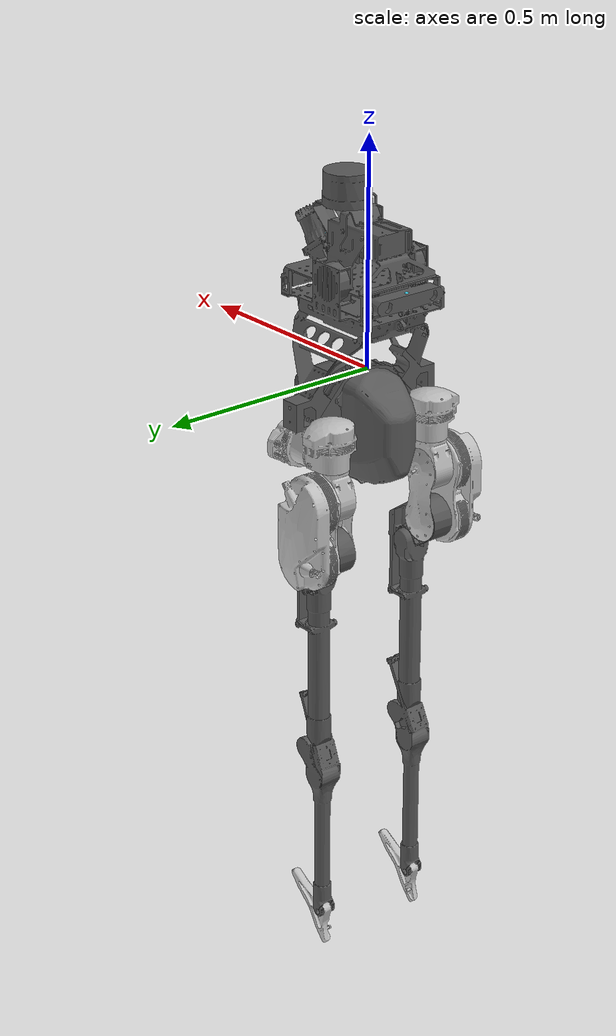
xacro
<?xml version="1.0"?>
<!-- Author: Bruce JK Huang
	 Email:  bjhuang@umich.edu
     Date:   10/10/2018   -->
<robot name="cassie"
  xmlns:xacro="http://ros.org/wiki/xacro">

  <!-- Properties -->
  <xacro:property name="cyan_RGB" value="0.267 0.89 1 1" />
  <xacro:property name="black_RGB" value="0.1 0.1 0.1 1" />
  <xacro:property name="grey_RGB" value="0.35 0.35 0.35 1" />
  <xacro:property name="orange_RGB" value=".9569 .5372 .2588 1" />
  <xacro:property name="blue_RGB" value=".0157 .1176 .2588 1" />
  <xacro:property name="maize_RGB" value=".9451 .7686 0 1" />
  <xacro:property name="light_grey_RGB" value="0.75 0.75 0.75 1" />

  <!-- Link Definitions-->
  <xacro:macro name="torso" params="cname color">
    <link name="torso">
      <inertial>
        <origin xyz="0 0 0" rpy="0 0 0"/>
        <mass value="8" />
		<inertia ixx=".0942" ixy=".000169" ixz=".015" iyy=".084" iyz=".000516" izz=".113" />
      </inertial>
      <visual>
          <origin xyz="-0.192 -0.19 -0.095" rpy="1.57 0 1.57" />
        <geometry>
          <mesh filename="package://cassie_description/meshes/CassieTorso_Mount.STL" scale="0.001 0.001 0.001"/>
        </geometry>
        <material name="${cname}">
          <color rgba="${color}" />
        </material>
      </visual>
    </link>
  </xacro:macro>

  <xacro:macro name="top_lidar" params="cname color">
    <link name="top_lidar">
      <inertial>
        <origin xyz="0 0 0" rpy="0 0 0"/>
        <mass value="0" />
                <inertia ixx="0" ixy="0" ixz="0" iyy="0" iyz="0" izz="0" />
      </inertial>
      <visual>
          <origin xyz="0 0 0 " rpy="0 0 0" />
        <geometry>
           <sphere radius="0.01"/>
        </geometry>
        <material name="${cname}">
          <color rgba="${color}" />
        </material>
      </visual>
    </link>
  </xacro:macro>

  <xacro:macro name="tilted_lidar" params="cname color">
    <link name="tilted_lidar">
      <inertial>
        <origin xyz="0 0 0" rpy="0 0 0"/>
        <mass value="0" />
                <inertia ixx="0" ixy="0" ixz="0" iyy="0" iyz="0" izz="0" />
      </inertial>
      <visual>
          <origin xyz="0 0 0 " rpy="0 0 0" />
        <geometry>
           <sphere radius="0.01"/>
        </geometry>
        <material name="${cname}">
          <color rgba="${color}" />
        </material>
      </visual>
    </link>
  </xacro:macro>

  <xacro:macro name="front_camera" params="cname color">
    <link name="front_camera">
      <inertial>
        <origin xyz="0 0 0" rpy="0 0 0"/>
        <mass value="0" />
                <inertia ixx="0" ixy="0" ixz="0" iyy="0" iyz="0" izz="0" />
      </inertial>
      <visual>
          <origin xyz="0 0 0 " rpy="0 0 0" />
        <geometry>
           <sphere radius="0.01"/>
        </geometry>
        <material name="${cname}">
          <color rgba="${color}" />
        </material>
      </visual>
    </link>
  </xacro:macro>

  <xacro:macro name="back_camera" params="cname color">
    <link name="back_camera">
      <inertial>
        <origin xyz="0 0 0" rpy="0 0 0"/>
        <mass value="0" />
                <inertia ixx="0" ixy="0" ixz="0" iyy="0" iyz="0" izz="0" />
      </inertial>
      <visual>
          <origin xyz="0 0 0 " rpy="0 0 0" />
        <geometry>
           <sphere radius="0.01"/>
        </geometry>
        <material name="${cname}">
          <color rgba="${color}" />
        </material>
      </visual>
    </link>
  </xacro:macro>

  <xacro:macro name="vectorNav">
    <link name="vectorNav">
      <inertial>
        <origin xyz="0 0 0" rpy="0 0 0"/>
        <mass value="0" />
                <inertia ixx="0" ixy="0" ixz="0" iyy="0" iyz="0" izz="0" />
      </inertial>
    </link>
  </xacro:macro>

  <xacro:macro name="pelvis" params="cname color">
    <link name="pelvis">
      <inertial>
        <origin xyz=".0507 0 .0284" rpy="0 0 0"/>
        <mass value="10.33" />
		<inertia ixx=".0942" ixy=".000169" ixz=".015" iyy=".084" iyz=".000516" izz=".113" />
      </inertial>
      <visual>
        <origin xyz="0 0 0" rpy="0 0 0" />
        <geometry>
          <mesh filename="package://cassie_description/meshes/pelvis.stl" scale="1 1 1"/>
        </geometry>
        <material name="${cname}">
          <color rgba="${color}" />
        </material>
      </visual>
    </link>
  </xacro:macro>

  <xacro:macro name="pelvis_abduction" params="side cname color stl_ext">
    <link name="${side}_pelvis_abduction">
      <inertial>
        <origin xyz="0 0 0" rpy="0 0 0"/>
        <mass value="0" />
        <inertia ixx="0" ixy="0" ixz="0" iyy="0" iyz="0" izz="0" />
      </inertial>
      <visual>
        <origin xyz="0 0 0" rpy="0 0 0" />
        <geometry>
          <mesh filename="package://cassie_description/meshes/abduction${stl_ext}.stl" scale="1 1 1"/>
        </geometry>
        <material name="${cname}">
          <color rgba="${color}" />
        </material>
      </visual>
    </link>
  </xacro:macro>
  <xacro:macro name="pelvis_rotation" params="side cname color stl_ext reflect">
    <link name="${side}_pelvis_rotation">
      <inertial>
        <origin xyz=".0257 ${reflect*.0001} .0179" rpy="0 0 0"/>
        <mass value="1.82" />
        <inertia ixx=".00272" ixy="${reflect*.000000703}" ixz=".00000153" iyy=".00559" iyz="${reflect*.00000261}" izz=".004640" />
      </inertial>
      <visual>
        <origin xyz="0 0 0" rpy="0 0 0" />
        <geometry>
          <mesh filename="package://cassie_description/meshes/yaw${stl_ext}.stl" scale="1 1 1"/>
        </geometry>
        <material name="${cname}">
          <color rgba="${color}" />
        </material>
      </visual>
    </link>
  </xacro:macro>
  <xacro:macro name="hip" params="side cname color stl_ext">
    <link name="${side}_hip">
      <inertial>
        <origin xyz="-.0557 0 0" rpy="0 0 0"/>
        <mass value="1.17" />
        <inertia ixx=".000842" ixy=".000000246" ixz="-.000000625" iyy=".006080" iyz="-.00000004" izz=".006440" />
      </inertial>
      <visual>
        <origin xyz="0 0 0" rpy="0 0 0" />
        <geometry>
          <mesh filename="package://cassie_description/meshes/hip${stl_ext}.stl" scale="1 1 1"/>
        </geometry>
        <material name="${cname}">
          <color rgba="${color}" />
        </material>
      </visual>
    </link>
  </xacro:macro>
  <xacro:macro name="thigh" params="side cname color stl_ext reflect">
    <link name="${side}_thigh">
      <inertial>
        <origin xyz=".0598 .0001 ${reflect*-.0358}" rpy="0 0 0"/>
        <mass value="5.52" />
        <inertia ixx=".018" ixy=".000284" ixz="${reflect*-.0117}" iyy=".0563" iyz="${reflect*-.0000193}" izz=".0498" />
      </inertial>
      <visual>
        <origin xyz="0 0 0" rpy="0 0 0" />
        <geometry>
          <mesh filename="package://cassie_description/meshes/thigh${stl_ext}.stl" scale="1 1 1"/>
        </geometry>
        <material name="${cname}">
          <color rgba="${color}" />
        </material>
      </visual>
    </link>
  </xacro:macro>
  <xacro:macro name="knee" params="side cname color stl_ext reflect">
    <link name="${side}_knee">
      <inertial>
        <origin xyz=".023 .0321 ${reflect*-.0022}" rpy="0 0 0"/>
        <mass value=".758" />
        <inertia ixx=".002160" ixy=".000956" ixz="${reflect*.00000284}" iyy=".00144" iyz="${reflect*.000000739}" izz=".00334" />
      </inertial>
      <visual>
        <origin xyz="0 0 0" rpy="0 0 0" />
        <geometry>
          <mesh filename="package://cassie_description/meshes/knee-output${stl_ext}.stl" scale="1 1 1"/>
        </geometry>
        <material name="${cname}">
          <color rgba="${color}" />
        </material>
      </visual>
    </link>
  </xacro:macro>
  <xacro:macro name="shin" params="side cname color stl_ext reflect">
    <link name="${side}_shin">
      <inertial>
        <origin xyz=".1834 .0012 ${reflect*.0002}" rpy="0 0 0"/>
        <mass value=".577" />
        <inertia ixx=".000360" ixy=".000334" ixz="${reflect*-.000000194}" iyy=".0341" iyz="${reflect*.000000265}" izz=".0341" />
      </inertial>
      <visual>
        <origin xyz="0 0 0" rpy="0 0 0" />
        <geometry>
          <mesh filename="package://cassie_description/meshes/shin-bone${stl_ext}.stl" scale="1 1 1"/>
        </geometry>
        <material name="${cname}">
          <color rgba="${color}" />
        </material>
      </visual>
    </link>
  </xacro:macro>
  <xacro:macro name="tarsus" params="side cname color stl_ext reflect">
    <link name="${side}_tarsus">
      <inertial>
        <origin xyz=".1105 -.0306 ${reflect*-.0013}" rpy="0 0 0"/>
        <mass value=".782" />
        <inertia ixx=".00113" ixy="-.00288" ixz="${reflect*-.0000633}" iyy=".0231" iyz="${reflect*.0000362}" izz=".0239" />
      </inertial>
      <visual>
        <origin xyz="0 0 0" rpy="0 0 0" />
        <geometry>
          <mesh filename="package://cassie_description/meshes/tarsus${stl_ext}.stl" scale="1 1 1"/>
        </geometry>
        <material name="${cname}">
          <color rgba="${color}" />
        </material>
      </visual>
    </link>
  </xacro:macro>
  <xacro:macro name="toe" params="side cname color stl_ext reflect">
    <link name="${side}_toe">
      <inertial>
        <origin xyz=".0047 .0275 ${reflect*-.0001}" rpy="0 0 0"/>
        <mass value=".15" />
        <inertia ixx=".000287" ixy="-.0000986" ixz="${reflect*-.00000146}" iyy=".000171" iyz="${reflect*.000000172}" izz=".000449" />
      </inertial>
      <visual>
        <origin xyz="0 0 0" rpy="0 0 0" />
        <geometry>
          <mesh filename="package://cassie_description/meshes/toe${stl_ext}.stl" scale="1 1 1"/>
        </geometry>
        <material name="${cname}">
          <color rgba="${color}" />
        </material>
      </visual>
    </link>
  </xacro:macro>

  <!-- Joint Definitions -->
  <xacro:macro name="fixed_torso_to_pelvis">
    <joint name="fixed_torso_to_pelvis" type="fixed">
      <origin xyz="0 0 -0.15" rpy="0 0 0"/>
      <parent link="torso" />
      <child link="pelvis" />
    </joint>
  </xacro:macro>

  <xacro:macro name="fixed_torso_to_top_lidar">
    <joint name="fixed_torso_to_top_lidar" type="fixed">
      <origin xyz="0.065 0 0.38" rpy="0 0 0"/>
      <parent link="torso" />
      <child link="top_lidar" />
    </joint>
  </xacro:macro>

  <xacro:macro name="fixed_torso_to_tilted_lidar">
    <joint name="fixed_torso_to_tilted_lidar" type="fixed">
      <origin xyz="0.14 0 0.25" rpy="0 0.65 0"/>
      <parent link="torso" />
      <child link="tilted_lidar" />
    </joint>
  </xacro:macro>

  <xacro:macro name="fixed_torso_to_front_camera">
    <joint name="fixed_torso_to_front_camera" type="fixed">
      <origin xyz="0.16 0 0.19" rpy="0 0 0"/>
      <parent link="torso" />
      <child link="front_camera" />
    </joint>
  </xacro:macro>

  <xacro:macro name="fixed_torso_to_back_camera">
    <joint name="fixed_torso_to_back_camera" type="fixed">
      <origin xyz="-0.12 0 0.19" rpy="0 0 3.14"/>
      <parent link="torso" />
      <child link="back_camera" />
    </joint>
  </xacro:macro>

  <xacro:macro name="fixed_pelvis_to_vectorNav">
    <joint name="fixed_pelvis_to_vectorNav" type="fixed">
      <origin xyz="0.03155 0 -0.07996" rpy="0 0 0"/>
      <parent link="pelvis" />
      <child link="vectorNav" />
    </joint>
  </xacro:macro>

  <xacro:macro name="fixed_pelvis_to_abduction" params="side reflect">
    <joint name="fixed_${side}" type="fixed">
      <origin xyz="0.021 ${reflect*0.135} 0" rpy="0 ${pi/2} 0"/>
      <parent link="pelvis" />
      <child link="${side}_pelvis_abduction" />
    </joint>
  </xacro:macro>
  <xacro:macro name="hip_abduction" params="side">
    <joint name="hip_abduction_${side}" type="continuous">
      <origin xyz="0 0 -0.07" rpy="0 ${-pi/2} 0"/>
      <axis xyz="1 0 0"/>
      <parent link="${side}_pelvis_abduction" />
      <child link="${side}_pelvis_rotation" />
	  <xacro:if value="${side == 'left'}">
	    <limit lower="-0.2618" upper="0.3927" effort="4.5" velocity="12.1475" />
	  </xacro:if>
	  <xacro:if value="${side == 'right'}">
	    <limit lower="-0.3927" upper="0.2618" effort="4.5" velocity="12.1475" />
	  </xacro:if>
    </joint>
  </xacro:macro>
  <xacro:macro name="hip_rotation" params="side">
    <joint name="hip_rotation_${side}" type="continuous">
      <origin xyz="0 0 -0.09" rpy="0 ${pi/2} ${-pi/2}"/>
      <axis xyz="-1 0 0"/>
      <parent link="${side}_pelvis_rotation" />
      <child link="${side}_hip" />
      <limit lower="-0.3927" upper="0.3927" effort="4.5" velocity="12.1475" />
    </joint>
  </xacro:macro>
  <xacro:macro name="hip_flexion" params="side">
    <joint name="hip_flexion_${side}" type="continuous">
      <origin xyz="0 0 0" rpy="0 0 0"/>
      <axis xyz="0 0 1"/>
      <parent link="${side}_hip" />
      <child link="${side}_thigh" />
      <limit lower="-0.8727" upper="1.3963" effort="12.2" velocity="8.5085" />
    </joint>
  </xacro:macro>
  <xacro:macro name="knee_joint" params="side reflect">
    <joint name="knee_joint_${side}" type="continuous">
      <origin xyz="0.12 0 ${reflect*0.0045}" rpy="0 0 0"/>
      <axis xyz="0 0 1"/>
      <parent link="${side}_thigh" />
      <child link="${side}_knee" />
      <limit lower="-2.8623" upper="-0.6458" effort="12.2" velocity="8.5085" />
    </joint>
  </xacro:macro>
  <xacro:macro name="knee_to_shin" params="side">
    <joint name="knee_to_shin_${side}" type="continuous">
      <origin xyz="0.0607 0.0474 0" rpy="0 0 0"/>
      <axis xyz="0 0 1"/>
      <parent link="${side}_knee" />
      <child link="${side}_shin" />
      <limit lower="-100" upper="100" effort="0" velocity="100" />
    </joint>
  </xacro:macro>
  <xacro:macro name="ankle_joint" params="side">
    <joint name="ankle_joint_${side}" type="continuous">
      <origin xyz="0.4348 0.02 0" rpy="0 0 0"/>
      <axis xyz="0 0 1"/>
      <parent link="${side}_shin" />
      <child link="${side}_tarsus" />
      <limit lower="-100" upper="100" effort="0" velocity="100" />
    </joint>
  </xacro:macro>
  <xacro:macro name="toe_joint" params="side">
    <joint name="toe_joint_${side}" type="continuous">
      <origin xyz="0.408 -0.04 0" rpy="0 0 0"/>
      <axis xyz="0 0 1"/>
      <parent link="${side}_tarsus" />
      <child link="${side}_toe" />
      <limit lower="-2.4435" upper="-0.5236" effort="0.9" velocity="11.5192" />
    </joint>
  </xacro:macro>

  <!-- Transmission Definitions -->
  <xacro:macro name="hip_abduction_trans" params="side">
    <transmission name="hip_abduction_trans_${side}" type="transmission_interface/SimpleTransmission">
	  <joint name="hip_abduction_${side}"/>
	  <actuator name="hip_abduction_motor_${side}"/>
	  <motorInertia>0.000061</motorInertia>
	  <mechanicalReduction>25</mechanicalReduction>
    </transmission>
  </xacro:macro>
  <xacro:macro name="hip_rotation_trans" params="side">
    <transmission name="hip_rotation_trans_${side}" type="transmission_interface/SimpleTransmission">
	  <joint name="hip_rotation_${side}"/>
	  <actuator name="hip_rotation_motor_${side}"/>
	  <motorInertia>0.000061</motorInertia>
	  <mechanicalReduction>25</mechanicalReduction>
    </transmission>
  </xacro:macro>
  <xacro:macro name="hip_flexion_trans" params="side">
    <transmission name="hip_flexion_trans_${side}" type="transmission_interface/SimpleTransmission">
	  <joint name="hip_flexion_${side}"/>
	  <actuator name="hip_flexion_motor_${side}"/>
	  <motorInertia>0.000365</motorInertia>
	  <mechanicalReduction>16</mechanicalReduction>
    </transmission>
  </xacro:macro>
  <xacro:macro name="knee_joint_trans" params="side">
    <transmission name="knee_joint_trans_${side}" type="transmission_interface/SimpleTransmission">
	  <joint name="knee_joint_${side}"/>
	  <actuator name="knee_joint_motor_${side}"/>
	  <motorInertia>0.000365</motorInertia>
	  <mechanicalReduction>16</mechanicalReduction>
    </transmission>
  </xacro:macro>
  <xacro:macro name="toe_joint_trans" params="side">
    <transmission name="toe_joint_trans_${side}" type="transmission_interface/SimpleTransmission">
	  <joint name="toe_joint_${side}"/>
	  <actuator name="toe_joint_motor_${side}"/>
	  <motorInertia>0.0000049</motorInertia>
	  <mechanicalReduction>50</mechanicalReduction>
    </transmission>
  </xacro:macro>

  <!-- Links -->
  <xacro:torso cname="grey" color="${grey_RGB}" />
  <xacro:top_lidar cname="cyan" color="${cyan_RGB}" />
  <xacro:tilted_lidar cname="cyan" color="${cyan_RGB}" />
  <xacro:front_camera cname="cyan" color="${cyan_RGB}" />
  <xacro:back_camera cname="cyan" color="${cyan_RGB}" />
  <xacro:vectorNav />
  <xacro:pelvis cname="grey" color="${grey_RGB}" />
  <xacro:pelvis_abduction side="left" cname="light_grey" color="${light_grey_RGB}" stl_ext=""/>
  <xacro:pelvis_rotation side="left" cname="light_grey" color="${light_grey_RGB}" stl_ext="" reflect="1" />
  <xacro:hip side="left" cname="light_grey" color="${light_grey_RGB}" stl_ext="" />
  <xacro:thigh side="left" cname="light_grey" color="${light_grey_RGB}" stl_ext="" reflect="1"/>
  <xacro:knee side="left" cname="grey" color="${grey_RGB}" stl_ext="" reflect="1"/>
  <xacro:shin side="left" cname="grey" color="${grey_RGB}" stl_ext="" reflect="1"/>
  <xacro:tarsus side="left" cname="grey" color="${grey_RGB}" stl_ext="" reflect="1"/>
  <xacro:toe side="left" cname="light_grey" color="${light_grey_RGB}" stl_ext="" reflect="1"/>
  <xacro:pelvis_abduction side="right" cname="light_grey" color="${light_grey_RGB}" stl_ext="_mirror"/>
  <xacro:pelvis_rotation side="right" cname="light_grey" color="${light_grey_RGB}" stl_ext="_mirror" reflect="-1"/>
  <xacro:hip side="right" cname="light_grey" color="${light_grey_RGB}" stl_ext="_mirror"/>
  <xacro:thigh side="right" cname="light_grey" color="${light_grey_RGB}" stl_ext="_mirror" reflect="-1"/>
  <xacro:knee side="right" cname="grey" color="${grey_RGB}" stl_ext="_mirror" reflect="-1"/>
  <xacro:shin side="right" cname="grey" color="${grey_RGB}" stl_ext="_mirror" reflect="-1"/>
  <xacro:tarsus side="right" cname="grey" color="${grey_RGB}" stl_ext="_mirror" reflect="-1"/>
  <xacro:toe side="right" cname="light_grey" color="${light_grey_RGB}" stl_ext="_mirror" reflect="-1"/>

  <!-- Joints -->
  <xacro:fixed_torso_to_pelvis/>
  <xacro:fixed_torso_to_top_lidar/>
  <xacro:fixed_torso_to_tilted_lidar/>
  <xacro:fixed_torso_to_front_camera/>
  <xacro:fixed_torso_to_back_camera/>

  <xacro:fixed_pelvis_to_vectorNav />
  <xacro:fixed_pelvis_to_abduction side="left" reflect="1"/>
  <xacro:hip_abduction side="left"/>
  <xacro:hip_rotation side="left"/>
  <xacro:hip_flexion side="left"/>
  <xacro:knee_joint side="left" reflect="1"/>
  <xacro:knee_to_shin side="left"/>
  <xacro:ankle_joint side="left"/>
  <xacro:toe_joint side="left"/>
  <xacro:fixed_pelvis_to_abduction side="right" reflect="-1"/>
  <xacro:hip_abduction side="right"/>
  <xacro:hip_rotation side="right"/>
  <xacro:hip_flexion side="right"/>
  <xacro:knee_joint side="right" reflect="-1"/>
  <xacro:knee_to_shin side="right"/>
  <xacro:ankle_joint side="right"/>
  <xacro:toe_joint side="right"/>

  <!-- Transmissions -->
  <xacro:hip_abduction_trans side="left"/>
  <xacro:hip_rotation_trans side="left"/>
  <xacro:hip_flexion_trans side="left"/>
  <xacro:knee_joint_trans side="left"/>
  <xacro:toe_joint_trans side="left"/>
  <xacro:hip_abduction_trans side="right"/>
  <xacro:hip_rotation_trans side="right"/>
  <xacro:hip_flexion_trans side="right"/>
  <xacro:knee_joint_trans side="right"/>
  <xacro:toe_joint_trans side="right"/>

</robot>
